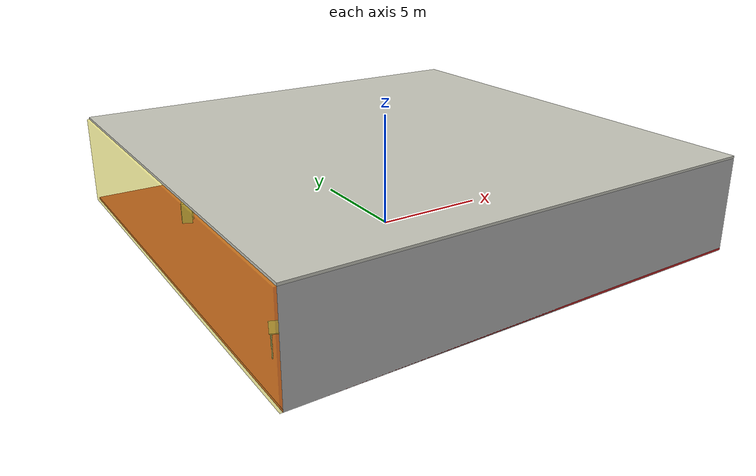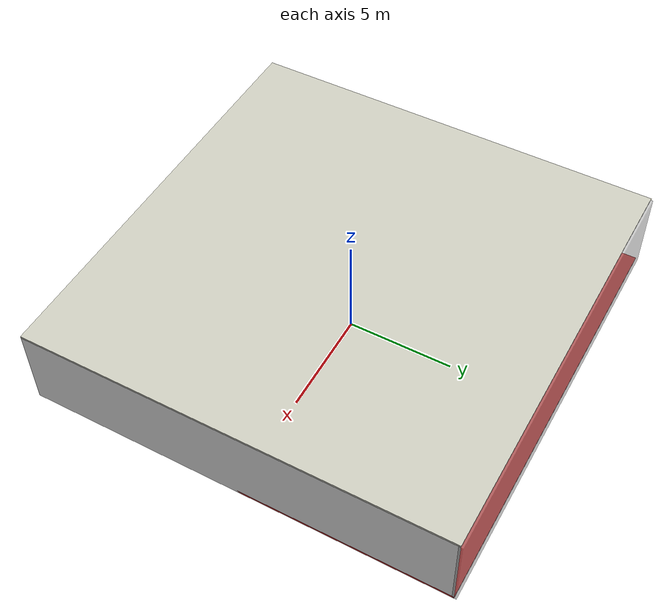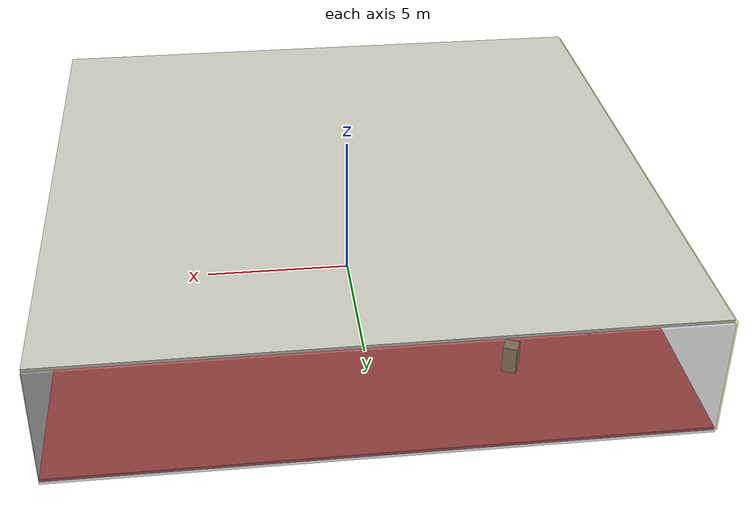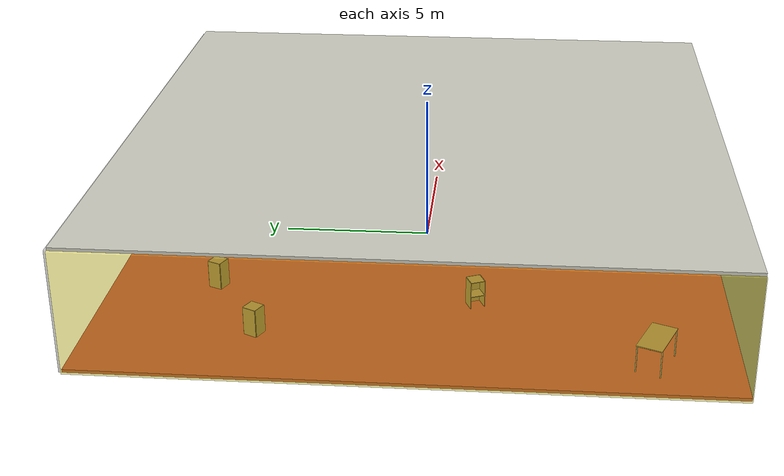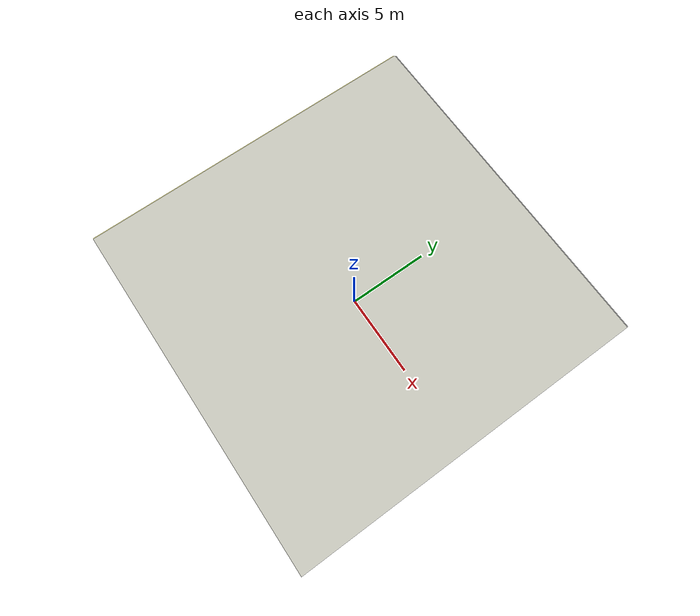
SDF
<sdf version="1.4">
 <world name="default">
  <physics type="ode">
   <max_step_size>0.001</max_step_size>
   <real_time_factor>1</real_time_factor>
   <real_time_update_rate>1000</real_time_update_rate>
   <gravity>0 0 -9.8</gravity>
  </physics>
  <scene><ambient>0.4 0.4 0.4 1</ambient><background>0.7 0.7 0.7 1</background><shadows>1</shadows></scene>
  <model name="Surrounding">
   <static>1</static>
   <link name="Ceiling">
    <collision name="Ceiling_Collision"><geometry><box><size>20 20 0.1</size></box></geometry></collision>
    <visual name="Ceiling_Visual">
     <geometry><box><size>20 20 0.1</size></box></geometry>
     <material>
      <script><uri>file://media/materials/scripts/gazebo.material</uri><name>Gazebo/PaintedWall</name></script>
     </material>
    </visual>
    <pose>0 0 4.05 0 0 0</pose>
   </link>
   <link name="Wall_South">
    <collision name="Wall_South_Collision">
     <geometry><box><size>20 0 4</size></box></geometry>
     <pose>0 0 2 0 -0 0</pose>
    </collision>
    <visual name="Wall_South_Visual">
     <pose>0 0 2 0 -0 0</pose>
     <geometry><box><size>20 0 4</size></box></geometry>
     <material>
      <script><uri>file://media/materials/scripts/gazebo.material</uri><name>Gazebo/LightOn</name></script>
     </material>
    </visual>
    <velocity_decay><linear>0</linear><angular>0</angular></velocity_decay>
    <pose>0 -10 0 0 -0 0</pose>
   </link>
   <link name="Wall_East">
    <collision name="Wall_21_Collision">
     <geometry><box><size>20 0 4</size></box></geometry>
     <pose>0 0 2 0 -0 0</pose>
    </collision>
    <visual name="Wall_21_Visual">
     <pose>0 0 2 0 -0 0</pose>
     <geometry><box><size>20 0 4</size></box></geometry>
     <material>
      <script><uri>file://media/materials/scripts/gazebo.material</uri><name>Gazebo/WhiteGlow</name></script>
     </material>
    </visual>
    <velocity_decay><linear>0</linear><angular>0</angular></velocity_decay>
    <pose>10 0 0 0 -0 1.5708</pose>
   </link>
   <link name="Wall_North">
    <collision name="Wall_22_Collision">
     <geometry><box><size>20 0.2 4</size></box></geometry>
     <pose>0 0 2 0 -0 0</pose>
    </collision>
    <visual name="Wall_22_Visual">
     <pose>0 0 2 0 -0 0</pose>
     <geometry><box><size>20 0.2 4</size></box></geometry>
     <material>
      <script><uri>file://media/materials/scripts/gazebo.material</uri><name>Gazebo/GreyTransparent</name></script>
     </material>
    </visual>
    <velocity_decay><linear>0</linear><angular>0</angular></velocity_decay>
    <pose>0 10 0 0 -0 0</pose>
   </link>
   <link name="Wall_West">
    <collision name="Wall_23_Collision">
     <geometry><box><size>20 0.2 4</size></box></geometry>
     <pose>0 0 2 0 -0 0</pose>
    </collision>
    <visual name="Wall_23_Visual">
     <pose>0 0 2 0 -0 0</pose>
     <geometry><box><size>20 0.2 4</size></box></geometry>
     <material>
      <script>
       <uri>file://media/materials/scripts/gazebo.material</uri>
       <name>Gazebo/YellowTransparent</name>
      </script>
     </material>
    </visual>
    <velocity_decay><linear>0</linear><angular>0</angular></velocity_decay>
    <pose>-10 0 0 0 0 -1.5708</pose>
   </link>
   <link name="Ground_link">
    <collision name="collision">
     <pose>0 0 .05 0 -0 0</pose>
     <geometry><box><size>20 20 0.1</size></box></geometry>
    </collision>
    <visual name="visual">
     <pose>0 0 .05 0 -0 0</pose>
     <geometry><box><size>20 20 0.1</size></box></geometry>
     <material>
      <script><uri>file://media/materials/scripts/gazebo.material</uri><name>Gazebo/RedGlow</name></script>
     </material>
    </visual>
   </link>
   <static>1</static>
  </model>
  <spherical_coordinates>
   <surface_model>EARTH_WGS84</surface_model>
   <latitude_deg>0</latitude_deg>
   <longitude_deg>0</longitude_deg>
   <elevation>0</elevation>
   <heading_deg>0</heading_deg>
  </spherical_coordinates>
  <light name="lightball_0" type="diffuse">
   <diffuse>0.8 0.8 0.8 1</diffuse>
   <specular>0.2 0.2 0.2 1</specular>
   <attenuation>
    <range>100</range>
    <constant>0.7</constant>
    <linear>0.01</linear>
    <quadratic>0.001</quadratic>
   </attenuation>
   <direction>-0.5 0.1 -0.9</direction>
   <pose>-9.17621159828 -7.77716427064 3.19575976075 0 0 0</pose>
  </light>
  <light name="lightball_1" type="diffuse">
   <diffuse>0.8 0.8 0.8 1</diffuse>
   <specular>0.2 0.2 0.2 1</specular>
   <attenuation>
    <range>100</range>
    <constant>0.7</constant>
    <linear>0.01</linear>
    <quadratic>0.001</quadratic>
   </attenuation>
   <direction>-0.5 0.1 -0.9</direction>
   <pose>-7.54364591611 -7.0009651443 2.70133706346 0 0 0</pose>
  </light>
  <light name="lightball_2" type="diffuse">
   <diffuse>0.8 0.8 0.8 1</diffuse>
   <specular>0.2 0.2 0.2 1</specular>
   <attenuation>
    <range>100</range>
    <constant>0.7</constant>
    <linear>0.01</linear>
    <quadratic>0.001</quadratic>
   </attenuation>
   <direction>-0.5 0.1 -0.9</direction>
   <pose>-6.14481042224 0.107583072922 2.42222775068 0 0 0</pose>
  </light>
  <light name="lightball_3" type="diffuse">
   <diffuse>0.8 0.8 0.8 1</diffuse>
   <specular>0.2 0.2 0.2 1</specular>
   <attenuation>
    <range>100</range>
    <constant>0.7</constant>
    <linear>0.01</linear>
    <quadratic>0.001</quadratic>
   </attenuation>
   <direction>-0.5 0.1 -0.9</direction>
   <pose>2.95588318747 -4.93267615376 3.36622476945 0 0 0</pose>
  </light>
  <light name="lightball_4" type="diffuse">
   <diffuse>0.8 0.8 0.8 1</diffuse>
   <specular>0.2 0.2 0.2 1</specular>
   <attenuation>
    <range>100</range>
    <constant>0.7</constant>
    <linear>0.01</linear>
    <quadratic>0.001</quadratic>
   </attenuation>
   <direction>-0.5 0.1 -0.9</direction>
   <pose>3.79810073095 -8.56640025762 0.6845014153 0 0 0</pose>
  </light>
  <include><uri>model://table</uri><pose>-8.34534875559 -7.38498528571 0 0 0 2.74610855866</pose></include>
  <include><uri>model://cabinet</uri><pose>-7.44215351752 4.76311102834 0 0 0 2.69012393984</pose></include>
  <include><uri>model://cabinet</uri><pose>-5.18787633418 -1.92894101925 0 0 0 0.405886868021</pose></include>
  <include><uri>model://cabinet</uri><pose>-4.50487225919 6.50168308692 0 0 0 2.73403204162</pose></include>
  <include><uri>model://cabinet</uri><pose>6.71312971427 3.46153229555 0 0 0 1.93336187027</pose></include>
 </world>
</sdf>

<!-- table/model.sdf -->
<sdf version="1.5">
  <model name="table">
    <static>true</static>
    <link name="link">
      <collision name="surface">
        <pose>0 0 1.0 0 0 0</pose>
        <geometry>
          <box>
            <size>1.5 0.8 0.03</size>
          </box>
        </geometry>
        <surface>
          <friction>
            <ode>
              <mu>0.6</mu>
              <mu2>0.6</mu2>
            </ode>
          </friction>
        </surface>
      </collision>
      <visual name="visual1">
        <pose>0 0 1.0 0 0 0</pose>
        <geometry>
          <box>
            <size>1.5 0.8 0.03</size>
          </box>
        </geometry>
        <material>
          <script>
            <uri>model://media/materials/scripts/gazebo.material</uri>
            <name>Gazebo/Wood</name>
          </script>
        </material>
      </visual>
      <collision name="front_left_leg">
        <pose>0.68 0.38 0.5 0 0 0</pose>
        <geometry>
          <cylinder>
            <radius>0.02</radius>
            <length>1.0</length>
          </cylinder>
        </geometry>
      </collision>
      <visual name="front_left_leg">
        <pose>0.68 0.38 0.5 0 0 0</pose>
        <geometry>
          <cylinder>
            <radius>0.02</radius>
            <length>1.0</length>
          </cylinder>
        </geometry>
        <material>
          <script>
            <uri>model://media/materials/scripts/gazebo.material</uri>
            <name>Gazebo/Grey</name>
          </script>
        </material>
      </visual>
      <collision name="front_right_leg">
        <pose>0.68 -0.38 0.5 0 0 0</pose>
        <geometry>
          <cylinder>
            <radius>0.02</radius>
            <length>1.0</length>
          </cylinder>
        </geometry>
      </collision>
      <visual name="front_right_leg">
        <pose>0.68 -0.38 0.5 0 0 0</pose>
        <geometry>
          <cylinder>
            <radius>0.02</radius>
            <length>1.0</length>
          </cylinder>
        </geometry>
        <material>
          <script>
            <uri>model://media/materials/scripts/gazebo.material</uri>
            <name>Gazebo/Grey</name>
          </script>
        </material>
      </visual>
      <collision name="back_right_leg">
        <pose>-0.68 -0.38 0.5 0 0 0</pose>
        <geometry>
          <cylinder>
            <radius>0.02</radius>
            <length>1.0</length>
          </cylinder>
        </geometry>
      </collision>
      <visual name="back_right_leg">
        <pose>-0.68 -0.38 0.5 0 0 0</pose>
        <geometry>
          <cylinder>
            <radius>0.02</radius>
            <length>1.0</length>
          </cylinder>
        </geometry>
        <material>
          <script>
            <uri>model://media/materials/scripts/gazebo.material</uri>
            <name>Gazebo/Grey</name>
          </script>
        </material>
      </visual>
      <collision name="back_left_leg">
        <pose>-0.68 0.38 0.5 0 0 0</pose>
        <geometry>
          <cylinder>
            <radius>0.02</radius>
            <length>1.0</length>
          </cylinder>
        </geometry>
      </collision>
      <visual name="back_left_leg">
        <pose>-0.68 0.38 0.5 0 0 0</pose>
        <geometry>
          <cylinder>
            <radius>0.02</radius>
            <length>1.0</length>
          </cylinder>
        </geometry>
        <material>
          <script>
            <uri>model://media/materials/scripts/gazebo.material</uri>
            <name>Gazebo/Grey</name>
          </script>
        </material>
      </visual>
    </link>
  </model>
</sdf>

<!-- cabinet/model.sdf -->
<sdf version="1.5">
  <model name="cabinet">
    <static>true</static>
    <link name="cabinet_bottom_plate">
      <inertial>
        <pose>0 0 -1 0 0 0</pose>
        <inertia>
          <ixx>2.050000</ixx>
          <ixy>0</ixy>
          <ixz>0</ixz>
          <iyy>2.050000</iyy>
          <iyz>0</iyz>
          <izz>2.050000</izz>
        </inertia>
        <mass>25.000000</mass>
      </inertial>
      <collision name="cabinet_bottom_plate_geom">
        <pose>0 0 0.010000 0 0 0</pose>
        <geometry>
          <box>
            <size>0.450000 0.450000 0.020000</size>
          </box>
        </geometry>
      </collision>
      <visual name="cabinet_bottom_plate_geom_visual">
        <pose>0 0 0.010000 0 0 0</pose>
        <geometry>
          <box>
            <size>0.450000 0.450000 0.020000</size>
          </box>
        </geometry>
        <material>
          <script>
            <uri>model://media/materials/scripts/gazebo.material</uri>
            <name>Gazebo/Wood</name>
          </script>
        </material>
      </visual>
      <collision name="cabinet_bottom_plate_geom_cabinet_back_plate">
        <pose>0.235000 0 0.510000 0 0 0</pose>
        <geometry>
          <box>
            <size>0.020000 0.450000 1.020000</size>
          </box>
        </geometry>
      </collision>
      <visual name="cabinet_bottom_plate_geom_cabinet_back_plate_visual">
        <pose>0.235000 0 0.510000 0 0 0</pose>
        <geometry>
          <box>
            <size>0.020000 0.450000 1.020000</size>
          </box>
        </geometry>
        <material>
          <script>
            <uri>model://media/materials/scripts/gazebo.material</uri>
            <name>Gazebo/Wood</name>
          </script>
        </material>
      </visual>
      <collision name="cabinet_bottom_plate_geom_cabinet_left_plate">
        <pose>0 0.235000 0.510000 0 0 0</pose>
        <geometry>
          <box>
            <size>0.450000 0.020000 1.020000</size>
          </box>
        </geometry>
      </collision>
      <visual name="cabinet_bottom_plate_geom_cabinet_left_plate_visual">
        <pose>0 0.235000 0.510000 0 0 0</pose>
        <geometry>
          <box>
            <size>0.450000 0.020000 1.020000</size>
          </box>
        </geometry>
        <material>
          <script>
            <uri>model://media/materials/scripts/gazebo.material</uri>
            <name>Gazebo/Wood</name>
          </script>
        </material>
      </visual>
      <collision name="cabinet_bottom_plate_geom_cabinet_middle_plate">
        <pose>0 0 0.510000 0 0 0</pose>
        <geometry>
          <box>
            <size>0.450000 0.450000 0.020000</size>
          </box>
        </geometry>
      </collision>
      <visual name="cabinet_bottom_plate_geom_cabinet_middle_plate_visual">
        <pose>0 0 0.510000 0 0 0</pose>
        <geometry>
          <box>
            <size>0.450000 0.450000 0.020000</size>
          </box>
        </geometry>
        <material>
          <script>
            <uri>model://media/materials/scripts/gazebo.material</uri>
            <name>Gazebo/Wood</name>
          </script>
        </material>
      </visual>
      <collision name="cabinet_bottom_plate_geom_cabinet_right_plate">
        <pose>0 -0.235000 0.510000 0 0 0</pose>
        <geometry>
          <box>
            <size>0.450000 0.020000 1.020000</size>
          </box>
        </geometry>
      </collision>
      <visual name="cabinet_bottom_plate_geom_cabinet_right_plate_visual">
        <pose>0 -0.235000 0.510000 0 0 0</pose>
        <geometry>
          <box>
            <size>0.450000 0.020000 1.020000</size>
          </box>
        </geometry>
        <material>
          <script>
            <uri>model://media/materials/scripts/gazebo.material</uri>
            <name>Gazebo/Wood</name>
          </script>
        </material>
      </visual>
      <collision name="cabinet_bottom_plate_geom_cabinet_top_plate">
        <pose>0 0 1.010000 0 0 0</pose>
        <geometry>
          <box>
            <size>0.450000 0.450000 0.020000</size>
          </box>
        </geometry>
      </collision>
      <visual name="cabinet_bottom_plate_geom_cabinet_top_plate_visual">
        <pose>0 0 1.010000 0 0 0</pose>
        <geometry>
          <box>
            <size>0.450000 0.450000 0.020000</size>
          </box>
        </geometry>
        <material>
          <script>
            <uri>model://media/materials/scripts/gazebo.material</uri>
            <name>Gazebo/Wood</name>
          </script>
        </material>
      </visual>
    </link>
  </model>
</sdf>
